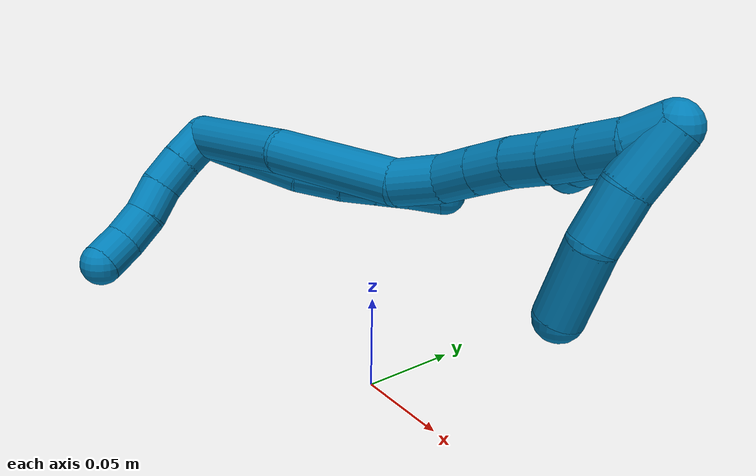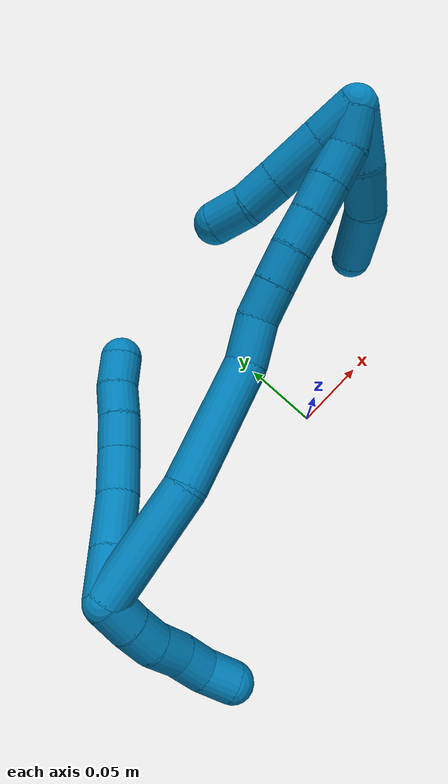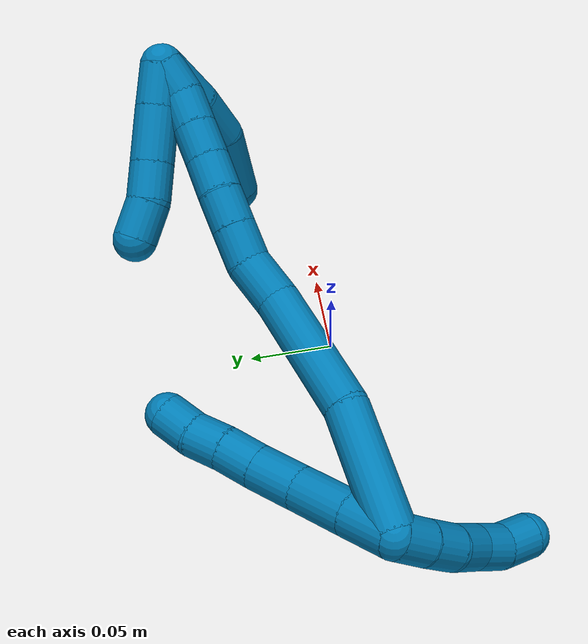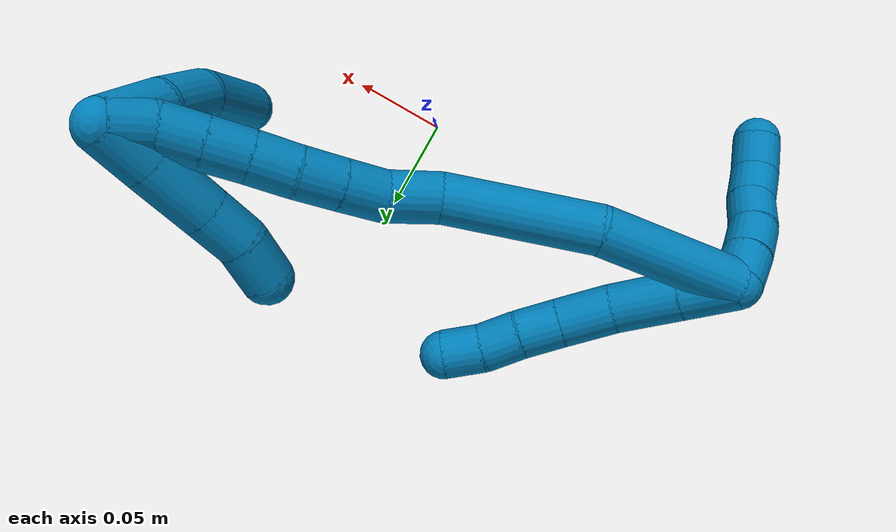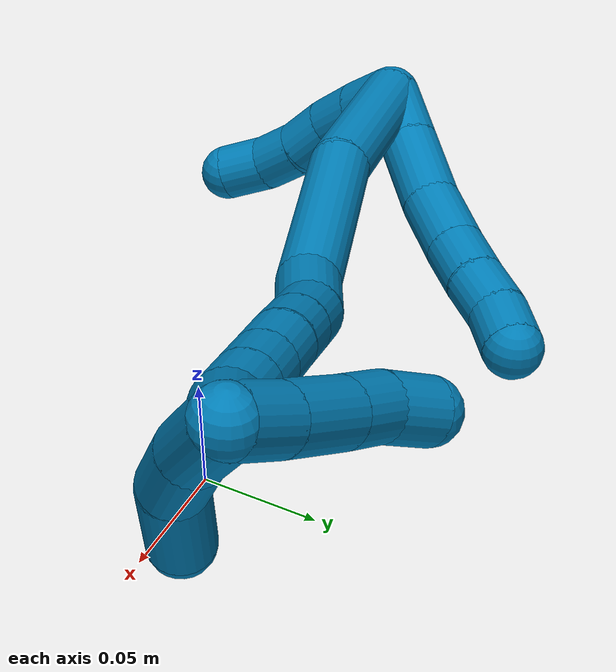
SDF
<sdf version="1.7">
 <world name="default">
  <model name="9">
   <static>0</static>
   <link name="9">
    <collision name="collision-cylinder-e_1_2_8">
     <pose>0.009787 0.009116 -0.003929 -1.97775 0.77833 -1.11475</pose>
     <geometry><cylinder><radius>0.0125</radius><length>0.02788</length></cylinder></geometry>
     <surface>
      <friction><ode><mu>1.16</mu><mu2>1.16</mu2><slip1>0</slip1><slip2>0</slip2></ode></friction>
      <contact><ode><kp>1e+06</kp><kd>1</kd><max_vel>0</max_vel><min_depth>0.001</min_depth></ode></contact>
     </surface>
    </collision>
    <visual name="visual-cylinder-e_1_2_8">
     <pose>0.009787 0.009116 -0.003929 -1.97775 0.77833 -1.11475</pose>
     <geometry><cylinder><radius>0.0125</radius><length>0.02788</length></cylinder></geometry>
     <material><ambient>0 0.490196 0.709804 1</ambient></material>
    </visual>
    <collision name="collision-cylinder-e_2_8_9">
     <pose>0.031233 0.029031 -0.012326 -1.96308 0.784152 -1.10789</pose>
     <geometry><cylinder><radius>0.0125</radius><length>0.033017</length></cylinder></geometry>
     <surface>
      <friction><ode><mu>1.16</mu><mu2>1.16</mu2><slip1>0</slip1><slip2>0</slip2></ode></friction>
      <contact><ode><kp>1e+06</kp><kd>1</kd><max_vel>0</max_vel><min_depth>0.001</min_depth></ode></contact>
     </surface>
    </collision>
    <visual name="visual-cylinder-e_2_8_9">
     <pose>0.031233 0.029031 -0.012326 -1.96308 0.784152 -1.10789</pose>
     <geometry><cylinder><radius>0.0125</radius><length>0.033017</length></cylinder></geometry>
     <material><ambient>0 0.490196 0.709804 1</ambient></material>
    </visual>
    <collision name="collision-cylinder-e_3_9_10">
     <pose>0.05244 0.049591 -0.018768 -1.77032 0.764493 -0.913573</pose>
     <geometry><cylinder><radius>0.0125</radius><length>0.027591</length></cylinder></geometry>
     <surface>
      <friction><ode><mu>1.16</mu><mu2>1.16</mu2><slip1>0</slip1><slip2>0</slip2></ode></friction>
      <contact><ode><kp>1e+06</kp><kd>1</kd><max_vel>0</max_vel><min_depth>0.001</min_depth></ode></contact>
     </surface>
    </collision>
    <visual name="visual-cylinder-e_3_9_10">
     <pose>0.05244 0.049591 -0.018768 -1.77032 0.764493 -0.913573</pose>
     <geometry><cylinder><radius>0.0125</radius><length>0.027591</length></cylinder></geometry>
     <material><ambient>0 0.490196 0.709804 1</ambient></material>
    </visual>
    <collision name="collision-cylinder-e_4_10_11">
     <pose>0.06954 0.066938 -0.021127 -1.62154 0.782226 -0.818654</pose>
     <geometry><cylinder><radius>0.0125</radius><length>0.021424</length></cylinder></geometry>
     <surface>
      <friction><ode><mu>1.16</mu><mu2>1.16</mu2><slip1>0</slip1><slip2>0</slip2></ode></friction>
      <contact><ode><kp>1e+06</kp><kd>1</kd><max_vel>0</max_vel><min_depth>0.001</min_depth></ode></contact>
     </surface>
    </collision>
    <visual name="visual-cylinder-e_4_10_11">
     <pose>0.06954 0.066938 -0.021127 -1.62154 0.782226 -0.818654</pose>
     <geometry><cylinder><radius>0.0125</radius><length>0.021424</length></cylinder></geometry>
     <material><ambient>0 0.490196 0.709804 1</ambient></material>
    </visual>
    <collision name="collision-cylinder-e_5_11_12">
     <pose>0.083575 0.082141 -0.022137 -1.65268 0.703815 -0.758527</pose>
     <geometry><cylinder><radius>0.0125</radius><length>0.020042</length></cylinder></geometry>
     <surface>
      <friction><ode><mu>1.16</mu><mu2>1.16</mu2><slip1>0</slip1><slip2>0</slip2></ode></friction>
      <contact><ode><kp>1e+06</kp><kd>1</kd><max_vel>0</max_vel><min_depth>0.001</min_depth></ode></contact>
     </surface>
    </collision>
    <visual name="visual-cylinder-e_5_11_12">
     <pose>0.083575 0.082141 -0.022137 -1.65268 0.703815 -0.758527</pose>
     <geometry><cylinder><radius>0.0125</radius><length>0.020042</length></cylinder></geometry>
     <material><ambient>0 0.490196 0.709804 1</ambient></material>
    </visual>
    <collision name="collision-cylinder-e_6_12_6">
     <pose>0.097911 0.095971 -0.023203 -1.64164 0.89995 -0.956697</pose>
     <geometry><cylinder><radius>0.0125</radius><length>0.020047</length></cylinder></geometry>
     <surface>
      <friction><ode><mu>1.16</mu><mu2>1.16</mu2><slip1>0</slip1><slip2>0</slip2></ode></friction>
      <contact><ode><kp>1e+06</kp><kd>1</kd><max_vel>0</max_vel><min_depth>0.001</min_depth></ode></contact>
     </surface>
    </collision>
    <visual name="visual-cylinder-e_6_12_6">
     <pose>0.097911 0.095971 -0.023203 -1.64164 0.89995 -0.956697</pose>
     <geometry><cylinder><radius>0.0125</radius><length>0.020047</length></cylinder></geometry>
     <material><ambient>0 0.490196 0.709804 1</ambient></material>
    </visual>
    <collision name="collision-cylinder-e_1_2_13">
     <pose>-0.000836 -0.00743 -0.006641 2.3002 -0.08374 -0.186732</pose>
     <geometry><cylinder><radius>0.0125</radius><length>0.02</length></cylinder></geometry>
     <surface>
      <friction><ode><mu>1.16</mu><mu2>1.16</mu2><slip1>0</slip1><slip2>0</slip2></ode></friction>
      <contact><ode><kp>1e+06</kp><kd>1</kd><max_vel>0</max_vel><min_depth>0.001</min_depth></ode></contact>
     </surface>
    </collision>
    <visual name="visual-cylinder-e_1_2_13">
     <pose>-0.000836 -0.00743 -0.006641 2.3002 -0.08374 -0.186732</pose>
     <geometry><cylinder><radius>0.0125</radius><length>0.02</length></cylinder></geometry>
     <material><ambient>0 0.490196 0.709804 1</ambient></material>
    </visual>
    <collision name="collision-cylinder-e_2_13_14">
     <pose>-0.001801 -0.021988 -0.020293 2.34788 -0.01283 -0.030613</pose>
     <geometry><cylinder><radius>0.0125</radius><length>0.02</length></cylinder></geometry>
     <surface>
      <friction><ode><mu>1.16</mu><mu2>1.16</mu2><slip1>0</slip1><slip2>0</slip2></ode></friction>
      <contact><ode><kp>1e+06</kp><kd>1</kd><max_vel>0</max_vel><min_depth>0.001</min_depth></ode></contact>
     </surface>
    </collision>
    <visual name="visual-cylinder-e_2_13_14">
     <pose>-0.001801 -0.021988 -0.020293 2.34788 -0.01283 -0.030613</pose>
     <geometry><cylinder><radius>0.0125</radius><length>0.02</length></cylinder></geometry>
     <material><ambient>0 0.490196 0.709804 1</ambient></material>
    </visual>
    <collision name="collision-cylinder-e_3_14_15">
     <pose>-0.000152 -0.035446 -0.03484 2.44301 0.178704 0.482377</pose>
     <geometry><cylinder><radius>0.0125</radius><length>0.02</length></cylinder></geometry>
     <surface>
      <friction><ode><mu>1.16</mu><mu2>1.16</mu2><slip1>0</slip1><slip2>0</slip2></ode></friction>
      <contact><ode><kp>1e+06</kp><kd>1</kd><max_vel>0</max_vel><min_depth>0.001</min_depth></ode></contact>
     </surface>
    </collision>
    <visual name="visual-cylinder-e_3_14_15">
     <pose>-0.000152 -0.035446 -0.03484 2.44301 0.178704 0.482377</pose>
     <geometry><cylinder><radius>0.0125</radius><length>0.02</length></cylinder></geometry>
     <material><ambient>0 0.490196 0.709804 1</ambient></material>
    </visual>
    <collision name="collision-cylinder-e_4_15_16">
     <pose>0.002557 -0.049385 -0.048796 2.27156 0.093267 0.200174</pose>
     <geometry><cylinder><radius>0.0125</radius><length>0.02</length></cylinder></geometry>
     <surface>
      <friction><ode><mu>1.16</mu><mu2>1.16</mu2><slip1>0</slip1><slip2>0</slip2></ode></friction>
      <contact><ode><kp>1e+06</kp><kd>1</kd><max_vel>0</max_vel><min_depth>0.001</min_depth></ode></contact>
     </surface>
    </collision>
    <visual name="visual-cylinder-e_4_15_16">
     <pose>0.002557 -0.049385 -0.048796 2.27156 0.093267 0.200174</pose>
     <geometry><cylinder><radius>0.0125</radius><length>0.02</length></cylinder></geometry>
     <material><ambient>0 0.490196 0.709804 1</ambient></material>
    </visual>
    <collision name="collision-cylinder-e_5_16_5">
     <pose>0.006371 -0.06561 -0.059396 2.02258 0.292394 0.461853</pose>
     <geometry><cylinder><radius>0.0125</radius><length>0.02</length></cylinder></geometry>
     <surface>
      <friction><ode><mu>1.16</mu><mu2>1.16</mu2><slip1>0</slip1><slip2>0</slip2></ode></friction>
      <contact><ode><kp>1e+06</kp><kd>1</kd><max_vel>0</max_vel><min_depth>0.001</min_depth></ode></contact>
     </surface>
    </collision>
    <visual name="visual-cylinder-e_5_16_5">
     <pose>0.006371 -0.06561 -0.059396 2.02258 0.292394 0.461853</pose>
     <geometry><cylinder><radius>0.0125</radius><length>0.02</length></cylinder></geometry>
     <material><ambient>0 0.490196 0.709804 1</ambient></material>
    </visual>
    <collision name="collision-cylinder-e_1_2_17">
     <pose>0.035561 0.004173 0.003637 -0.853985 1.41637 -0.743085</pose>
     <geometry><cylinder><radius>0.0125</radius><length>0.071978</length></cylinder></geometry>
     <surface>
      <friction><ode><mu>1.16</mu><mu2>1.16</mu2><slip1>0</slip1><slip2>0</slip2></ode></friction>
      <contact><ode><kp>1e+06</kp><kd>1</kd><max_vel>0</max_vel><min_depth>0.001</min_depth></ode></contact>
     </surface>
    </collision>
    <visual name="visual-cylinder-e_1_2_17">
     <pose>0.035561 0.004173 0.003637 -0.853985 1.41637 -0.743085</pose>
     <geometry><cylinder><radius>0.0125</radius><length>0.071978</length></cylinder></geometry>
     <material><ambient>0 0.490196 0.709804 1</ambient></material>
    </visual>
    <collision name="collision-cylinder-e_2_17_18">
     <pose>0.107786 0.019593 0.00658 -1.63243 1.27265 -1.3321</pose>
     <geometry><cylinder><radius>0.0125</radius><length>0.076714</length></cylinder></geometry>
     <surface>
      <friction><ode><mu>1.16</mu><mu2>1.16</mu2><slip1>0</slip1><slip2>0</slip2></ode></friction>
      <contact><ode><kp>1e+06</kp><kd>1</kd><max_vel>0</max_vel><min_depth>0.001</min_depth></ode></contact>
     </surface>
    </collision>
    <visual name="visual-cylinder-e_2_17_18">
     <pose>0.107786 0.019593 0.00658 -1.63243 1.27265 -1.3321</pose>
     <geometry><cylinder><radius>0.0125</radius><length>0.076714</length></cylinder></geometry>
     <material><ambient>0 0.490196 0.709804 1</ambient></material>
    </visual>
    <collision name="collision-cylinder-e_3_18_19">
     <pose>0.15611 0.036552 0.009288 -1.03371 1.05245 -0.63778</pose>
     <geometry><cylinder><radius>0.0125</radius><length>0.026845</length></cylinder></geometry>
     <surface>
      <friction><ode><mu>1.16</mu><mu2>1.16</mu2><slip1>0</slip1><slip2>0</slip2></ode></friction>
      <contact><ode><kp>1e+06</kp><kd>1</kd><max_vel>0</max_vel><min_depth>0.001</min_depth></ode></contact>
     </surface>
    </collision>
    <visual name="visual-cylinder-e_3_18_19">
     <pose>0.15611 0.036552 0.009288 -1.03371 1.05245 -0.63778</pose>
     <geometry><cylinder><radius>0.0125</radius><length>0.026845</length></cylinder></geometry>
     <material><ambient>0 0.490196 0.709804 1</ambient></material>
    </visual>
    <collision name="collision-cylinder-e_4_19_20">
     <pose>0.177562 0.044238 0.017226 -0.410029 1.10313 -0.254487</pose>
     <geometry><cylinder><radius>0.0125</radius><length>0.021942</length></cylinder></geometry>
     <surface>
      <friction><ode><mu>1.16</mu><mu2>1.16</mu2><slip1>0</slip1><slip2>0</slip2></ode></friction>
      <contact><ode><kp>1e+06</kp><kd>1</kd><max_vel>0</max_vel><min_depth>0.001</min_depth></ode></contact>
     </surface>
    </collision>
    <visual name="visual-cylinder-e_4_19_20">
     <pose>0.177562 0.044238 0.017226 -0.410029 1.10313 -0.254487</pose>
     <geometry><cylinder><radius>0.0125</radius><length>0.021942</length></cylinder></geometry>
     <material><ambient>0 0.490196 0.709804 1</ambient></material>
    </visual>
    <collision name="collision-cylinder-e_5_20_21">
     <pose>0.196725 0.047985 0.025948 -0.401219 1.11897 -0.253319</pose>
     <geometry><cylinder><radius>0.0125</radius><length>0.020829</length></cylinder></geometry>
     <surface>
      <friction><ode><mu>1.16</mu><mu2>1.16</mu2><slip1>0</slip1><slip2>0</slip2></ode></friction>
      <contact><ode><kp>1e+06</kp><kd>1</kd><max_vel>0</max_vel><min_depth>0.001</min_depth></ode></contact>
     </surface>
    </collision>
    <visual name="visual-cylinder-e_5_20_21">
     <pose>0.196725 0.047985 0.025948 -0.401219 1.11897 -0.253319</pose>
     <geometry><cylinder><radius>0.0125</radius><length>0.020829</length></cylinder></geometry>
     <material><ambient>0 0.490196 0.709804 1</ambient></material>
    </visual>
    <collision name="collision-cylinder-e_6_21_22">
     <pose>0.215975 0.051308 0.033537 -0.426648 1.20912 -0.2971</pose>
     <geometry><cylinder><radius>0.0125</radius><length>0.021129</length></cylinder></geometry>
     <surface>
      <friction><ode><mu>1.16</mu><mu2>1.16</mu2><slip1>0</slip1><slip2>0</slip2></ode></friction>
      <contact><ode><kp>1e+06</kp><kd>1</kd><max_vel>0</max_vel><min_depth>0.001</min_depth></ode></contact>
     </surface>
    </collision>
    <visual name="visual-cylinder-e_6_21_22">
     <pose>0.215975 0.051308 0.033537 -0.426648 1.20912 -0.2971</pose>
     <geometry><cylinder><radius>0.0125</radius><length>0.021129</length></cylinder></geometry>
     <material><ambient>0 0.490196 0.709804 1</ambient></material>
    </visual>
    <collision name="collision-cylinder-e_7_22_23">
     <pose>0.235152 0.05452 0.040582 -0.428892 1.16406 -0.28471</pose>
     <geometry><cylinder><radius>0.0125</radius><length>0.020242</length></cylinder></geometry>
     <surface>
      <friction><ode><mu>1.16</mu><mu2>1.16</mu2><slip1>0</slip1><slip2>0</slip2></ode></friction>
      <contact><ode><kp>1e+06</kp><kd>1</kd><max_vel>0</max_vel><min_depth>0.001</min_depth></ode></contact>
     </surface>
    </collision>
    <visual name="visual-cylinder-e_7_22_23">
     <pose>0.235152 0.05452 0.040582 -0.428892 1.16406 -0.28471</pose>
     <geometry><cylinder><radius>0.0125</radius><length>0.020242</length></cylinder></geometry>
     <material><ambient>0 0.490196 0.709804 1</ambient></material>
    </visual>
    <collision name="collision-cylinder-e_8_23_24">
     <pose>0.253669 0.057826 0.047823 -0.427876 1.16556 -0.284482</pose>
     <geometry><cylinder><radius>0.0125</radius><length>0.02007</length></cylinder></geometry>
     <surface>
      <friction><ode><mu>1.16</mu><mu2>1.16</mu2><slip1>0</slip1><slip2>0</slip2></ode></friction>
      <contact><ode><kp>1e+06</kp><kd>1</kd><max_vel>0</max_vel><min_depth>0.001</min_depth></ode></contact>
     </surface>
    </collision>
    <visual name="visual-cylinder-e_8_23_24">
     <pose>0.253669 0.057826 0.047823 -0.427876 1.16556 -0.284482</pose>
     <geometry><cylinder><radius>0.0125</radius><length>0.02007</length></cylinder></geometry>
     <material><ambient>0 0.490196 0.709804 1</ambient></material>
    </visual>
    <collision name="collision-cylinder-e_9_24_1">
     <pose>0.270772 0.063264 0.056523 -0.639777 0.891861 -0.314112</pose>
     <geometry><cylinder><radius>0.0125</radius><length>0.020251</length></cylinder></geometry>
     <surface>
      <friction><ode><mu>1.16</mu><mu2>1.16</mu2><slip1>0</slip1><slip2>0</slip2></ode></friction>
      <contact><ode><kp>1e+06</kp><kd>1</kd><max_vel>0</max_vel><min_depth>0.001</min_depth></ode></contact>
     </surface>
    </collision>
    <visual name="visual-cylinder-e_9_24_1">
     <pose>0.270772 0.063264 0.056523 -0.639777 0.891861 -0.314112</pose>
     <geometry><cylinder><radius>0.0125</radius><length>0.020251</length></cylinder></geometry>
     <material><ambient>0 0.490196 0.709804 1</ambient></material>
    </visual>
    <collision name="collision-cylinder-e_1_1_25">
     <pose>0.274392 0.059321 0.048242 2.61727 -0.268884 -0.933784</pose>
     <geometry><cylinder><radius>0.0125</radius><length>0.032071</length></cylinder></geometry>
     <surface>
      <friction><ode><mu>1.16</mu><mu2>1.16</mu2><slip1>0</slip1><slip2>0</slip2></ode></friction>
      <contact><ode><kp>1e+06</kp><kd>1</kd><max_vel>0</max_vel><min_depth>0.001</min_depth></ode></contact>
     </surface>
    </collision>
    <visual name="visual-cylinder-e_1_1_25">
     <pose>0.274392 0.059321 0.048242 2.61727 -0.268884 -0.933784</pose>
     <geometry><cylinder><radius>0.0125</radius><length>0.032071</length></cylinder></geometry>
     <material><ambient>0 0.490196 0.709804 1</ambient></material>
    </visual>
    <collision name="collision-cylinder-e_2_25_26">
     <pose>0.267155 0.046584 0.022223 2.76496 -0.215672 -1.03319</pose>
     <geometry><cylinder><radius>0.0125</radius><length>0.027822</length></cylinder></geometry>
     <surface>
      <friction><ode><mu>1.16</mu><mu2>1.16</mu2><slip1>0</slip1><slip2>0</slip2></ode></friction>
      <contact><ode><kp>1e+06</kp><kd>1</kd><max_vel>0</max_vel><min_depth>0.001</min_depth></ode></contact>
     </surface>
    </collision>
    <visual name="visual-cylinder-e_2_25_26">
     <pose>0.267155 0.046584 0.022223 2.76496 -0.215672 -1.03319</pose>
     <geometry><cylinder><radius>0.0125</radius><length>0.027822</length></cylinder></geometry>
     <material><ambient>0 0.490196 0.709804 1</ambient></material>
    </visual>
    <collision name="collision-cylinder-e_3_26_4">
     <pose>0.258439 0.040433 -0.009594 3.08155 -0.290239 -2.73629</pose>
     <geometry><cylinder><radius>0.0125</radius><length>0.040107</length></cylinder></geometry>
     <surface>
      <friction><ode><mu>1.16</mu><mu2>1.16</mu2><slip1>0</slip1><slip2>0</slip2></ode></friction>
      <contact><ode><kp>1e+06</kp><kd>1</kd><max_vel>0</max_vel><min_depth>0.001</min_depth></ode></contact>
     </surface>
    </collision>
    <visual name="visual-cylinder-e_3_26_4">
     <pose>0.258439 0.040433 -0.009594 3.08155 -0.290239 -2.73629</pose>
     <geometry><cylinder><radius>0.0125</radius><length>0.040107</length></cylinder></geometry>
     <material><ambient>0 0.490196 0.709804 1</ambient></material>
    </visual>
    <collision name="collision-cylinder-e_1_1_27">
     <pose>0.268723 0.070793 0.055677 -2.58114 -0.955305 2.12673</pose>
     <geometry><cylinder><radius>0.0125</radius><length>0.024321</length></cylinder></geometry>
     <surface>
      <friction><ode><mu>1.16</mu><mu2>1.16</mu2><slip1>0</slip1><slip2>0</slip2></ode></friction>
      <contact><ode><kp>1e+06</kp><kd>1</kd><max_vel>0</max_vel><min_depth>0.001</min_depth></ode></contact>
     </surface>
    </collision>
    <visual name="visual-cylinder-e_1_1_27">
     <pose>0.268723 0.070793 0.055677 -2.58114 -0.955305 2.12673</pose>
     <geometry><cylinder><radius>0.0125</radius><length>0.024321</length></cylinder></geometry>
     <material><ambient>0 0.490196 0.709804 1</ambient></material>
    </visual>
    <collision name="collision-cylinder-e_2_27_28">
     <pose>0.245382 0.0791 0.042423 -2.58217 -0.999441 2.17292</pose>
     <geometry><cylinder><radius>0.0125</radius><length>0.031887</length></cylinder></geometry>
     <surface>
      <friction><ode><mu>1.16</mu><mu2>1.16</mu2><slip1>0</slip1><slip2>0</slip2></ode></friction>
      <contact><ode><kp>1e+06</kp><kd>1</kd><max_vel>0</max_vel><min_depth>0.001</min_depth></ode></contact>
     </surface>
    </collision>
    <visual name="visual-cylinder-e_2_27_28">
     <pose>0.245382 0.0791 0.042423 -2.58217 -0.999441 2.17292</pose>
     <geometry><cylinder><radius>0.0125</radius><length>0.031887</length></cylinder></geometry>
     <material><ambient>0 0.490196 0.709804 1</ambient></material>
    </visual>
    <collision name="collision-cylinder-e_3_28_29">
     <pose>0.222748 0.086728 0.030526 -2.55458 -1.03218 2.16269</pose>
     <geometry><cylinder><radius>0.0125</radius><length>0.02149</length></cylinder></geometry>
     <surface>
      <friction><ode><mu>1.16</mu><mu2>1.16</mu2><slip1>0</slip1><slip2>0</slip2></ode></friction>
      <contact><ode><kp>1e+06</kp><kd>1</kd><max_vel>0</max_vel><min_depth>0.001</min_depth></ode></contact>
     </surface>
    </collision>
    <visual name="visual-cylinder-e_3_28_29">
     <pose>0.222748 0.086728 0.030526 -2.55458 -1.03218 2.16269</pose>
     <geometry><cylinder><radius>0.0125</radius><length>0.02149</length></cylinder></geometry>
     <material><ambient>0 0.490196 0.709804 1</ambient></material>
    </visual>
    <collision name="collision-cylinder-e_4_29_3">
     <pose>0.205329 0.095505 0.020995 -2.28298 -0.825539 1.52647</pose>
     <geometry><cylinder><radius>0.0125</radius><length>0.022302</length></cylinder></geometry>
     <surface>
      <friction><ode><mu>1.16</mu><mu2>1.16</mu2><slip1>0</slip1><slip2>0</slip2></ode></friction>
      <contact><ode><kp>1e+06</kp><kd>1</kd><max_vel>0</max_vel><min_depth>0.001</min_depth></ode></contact>
     </surface>
    </collision>
    <visual name="visual-cylinder-e_4_29_3">
     <pose>0.205329 0.095505 0.020995 -2.28298 -0.825539 1.52647</pose>
     <geometry><cylinder><radius>0.0125</radius><length>0.022302</length></cylinder></geometry>
     <material><ambient>0 0.490196 0.709804 1</ambient></material>
    </visual>
    <collision name="collision-sphere-3">
     <pose>0.197134 0.101229 0.016054 0 -0 0</pose>
     <geometry><sphere><radius>0.0125</radius></sphere></geometry>
     <surface>
      <friction><ode><mu>1.16</mu><mu2>1.16</mu2><slip1>0</slip1><slip2>0</slip2></ode></friction>
      <contact><ode><kp>1e+06</kp><kd>1</kd><max_vel>0</max_vel><min_depth>0.001</min_depth></ode></contact>
     </surface>
    </collision>
    <visual name="visual-sphere-3">
     <pose>0.197134 0.101229 0.016054 0 -0 0</pose>
     <geometry><sphere><radius>0.0125</radius></sphere></geometry>
     <material><ambient>0 0.490196 0.709804 1</ambient></material>
    </visual>
    <collision name="collision-sphere-29">
     <pose>0.213524 0.089781 0.025937 0 -0 0</pose>
     <geometry><sphere><radius>0.0125</radius></sphere></geometry>
     <surface>
      <friction><ode><mu>1.16</mu><mu2>1.16</mu2><slip1>0</slip1><slip2>0</slip2></ode></friction>
      <contact><ode><kp>1e+06</kp><kd>1</kd><max_vel>0</max_vel><min_depth>0.001</min_depth></ode></contact>
     </surface>
    </collision>
    <visual name="visual-sphere-29">
     <pose>0.213524 0.089781 0.025937 0 -0 0</pose>
     <geometry><sphere><radius>0.0125</radius></sphere></geometry>
     <material><ambient>0 0.490196 0.709804 1</ambient></material>
    </visual>
    <collision name="collision-sphere-28">
     <pose>0.231971 0.083676 0.035115 0 -0 0</pose>
     <geometry><sphere><radius>0.0125</radius></sphere></geometry>
     <surface>
      <friction><ode><mu>1.16</mu><mu2>1.16</mu2><slip1>0</slip1><slip2>0</slip2></ode></friction>
      <contact><ode><kp>1e+06</kp><kd>1</kd><max_vel>0</max_vel><min_depth>0.001</min_depth></ode></contact>
     </surface>
    </collision>
    <visual name="visual-sphere-28">
     <pose>0.231971 0.083676 0.035115 0 -0 0</pose>
     <geometry><sphere><radius>0.0125</radius></sphere></geometry>
     <material><ambient>0 0.490196 0.709804 1</ambient></material>
    </visual>
    <collision name="collision-sphere-27">
     <pose>0.258794 0.074525 0.04973 0 -0 0</pose>
     <geometry><sphere><radius>0.0125</radius></sphere></geometry>
     <surface>
      <friction><ode><mu>1.16</mu><mu2>1.16</mu2><slip1>0</slip1><slip2>0</slip2></ode></friction>
      <contact><ode><kp>1e+06</kp><kd>1</kd><max_vel>0</max_vel><min_depth>0.001</min_depth></ode></contact>
     </surface>
    </collision>
    <visual name="visual-sphere-27">
     <pose>0.258794 0.074525 0.04973 0 -0 0</pose>
     <geometry><sphere><radius>0.0125</radius></sphere></geometry>
     <material><ambient>0 0.490196 0.709804 1</ambient></material>
    </visual>
    <collision name="collision-sphere-4">
     <pose>0.2527 0.03928 -0.028774 0 -0 0</pose>
     <geometry><sphere><radius>0.0125</radius></sphere></geometry>
     <surface>
      <friction><ode><mu>1.16</mu><mu2>1.16</mu2><slip1>0</slip1><slip2>0</slip2></ode></friction>
      <contact><ode><kp>1e+06</kp><kd>1</kd><max_vel>0</max_vel><min_depth>0.001</min_depth></ode></contact>
     </surface>
    </collision>
    <visual name="visual-sphere-4">
     <pose>0.2527 0.03928 -0.028774 0 -0 0</pose>
     <geometry><sphere><radius>0.0125</radius></sphere></geometry>
     <material><ambient>0 0.490196 0.709804 1</ambient></material>
    </visual>
    <collision name="collision-sphere-26">
     <pose>0.264178 0.041586 0.009587 0 -0 0</pose>
     <geometry><sphere><radius>0.0125</radius></sphere></geometry>
     <surface>
      <friction><ode><mu>1.16</mu><mu2>1.16</mu2><slip1>0</slip1><slip2>0</slip2></ode></friction>
      <contact><ode><kp>1e+06</kp><kd>1</kd><max_vel>0</max_vel><min_depth>0.001</min_depth></ode></contact>
     </surface>
    </collision>
    <visual name="visual-sphere-26">
     <pose>0.264178 0.041586 0.009587 0 -0 0</pose>
     <geometry><sphere><radius>0.0125</radius></sphere></geometry>
     <material><ambient>0 0.490196 0.709804 1</ambient></material>
    </visual>
    <collision name="collision-sphere-25">
     <pose>0.270132 0.051582 0.034859 0 -0 0</pose>
     <geometry><sphere><radius>0.0125</radius></sphere></geometry>
     <surface>
      <friction><ode><mu>1.16</mu><mu2>1.16</mu2><slip1>0</slip1><slip2>0</slip2></ode></friction>
      <contact><ode><kp>1e+06</kp><kd>1</kd><max_vel>0</max_vel><min_depth>0.001</min_depth></ode></contact>
     </surface>
    </collision>
    <visual name="visual-sphere-25">
     <pose>0.270132 0.051582 0.034859 0 -0 0</pose>
     <geometry><sphere><radius>0.0125</radius></sphere></geometry>
     <material><ambient>0 0.490196 0.709804 1</ambient></material>
    </visual>
    <collision name="collision-sphere-1">
     <pose>0.278652 0.06706 0.061624 0 -0 0</pose>
     <geometry><sphere><radius>0.0125</radius></sphere></geometry>
     <surface>
      <friction><ode><mu>1.16</mu><mu2>1.16</mu2><slip1>0</slip1><slip2>0</slip2></ode></friction>
      <contact><ode><kp>1e+06</kp><kd>1</kd><max_vel>0</max_vel><min_depth>0.001</min_depth></ode></contact>
     </surface>
    </collision>
    <visual name="visual-sphere-1">
     <pose>0.278652 0.06706 0.061624 0 -0 0</pose>
     <geometry><sphere><radius>0.0125</radius></sphere></geometry>
     <material><ambient>0 0.490196 0.709804 1</ambient></material>
    </visual>
    <collision name="collision-sphere-24">
     <pose>0.262891 0.059468 0.051422 0 -0 0</pose>
     <geometry><sphere><radius>0.0125</radius></sphere></geometry>
     <surface>
      <friction><ode><mu>1.16</mu><mu2>1.16</mu2><slip1>0</slip1><slip2>0</slip2></ode></friction>
      <contact><ode><kp>1e+06</kp><kd>1</kd><max_vel>0</max_vel><min_depth>0.001</min_depth></ode></contact>
     </surface>
    </collision>
    <visual name="visual-sphere-24">
     <pose>0.262891 0.059468 0.051422 0 -0 0</pose>
     <geometry><sphere><radius>0.0125</radius></sphere></geometry>
     <material><ambient>0 0.490196 0.709804 1</ambient></material>
    </visual>
    <collision name="collision-sphere-23">
     <pose>0.244447 0.056185 0.044223 0 -0 0</pose>
     <geometry><sphere><radius>0.0125</radius></sphere></geometry>
     <surface>
      <friction><ode><mu>1.16</mu><mu2>1.16</mu2><slip1>0</slip1><slip2>0</slip2></ode></friction>
      <contact><ode><kp>1e+06</kp><kd>1</kd><max_vel>0</max_vel><min_depth>0.001</min_depth></ode></contact>
     </surface>
    </collision>
    <visual name="visual-sphere-23">
     <pose>0.244447 0.056185 0.044223 0 -0 0</pose>
     <geometry><sphere><radius>0.0125</radius></sphere></geometry>
     <material><ambient>0 0.490196 0.709804 1</ambient></material>
    </visual>
    <collision name="collision-sphere-22">
     <pose>0.225856 0.052855 0.03694 0 -0 0</pose>
     <geometry><sphere><radius>0.0125</radius></sphere></geometry>
     <surface>
      <friction><ode><mu>1.16</mu><mu2>1.16</mu2><slip1>0</slip1><slip2>0</slip2></ode></friction>
      <contact><ode><kp>1e+06</kp><kd>1</kd><max_vel>0</max_vel><min_depth>0.001</min_depth></ode></contact>
     </surface>
    </collision>
    <visual name="visual-sphere-22">
     <pose>0.225856 0.052855 0.03694 0 -0 0</pose>
     <geometry><sphere><radius>0.0125</radius></sphere></geometry>
     <material><ambient>0 0.490196 0.709804 1</ambient></material>
    </visual>
    <collision name="collision-sphere-21">
     <pose>0.206094 0.049761 0.030134 0 -0 0</pose>
     <geometry><sphere><radius>0.0125</radius></sphere></geometry>
     <surface>
      <friction><ode><mu>1.16</mu><mu2>1.16</mu2><slip1>0</slip1><slip2>0</slip2></ode></friction>
      <contact><ode><kp>1e+06</kp><kd>1</kd><max_vel>0</max_vel><min_depth>0.001</min_depth></ode></contact>
     </surface>
    </collision>
    <visual name="visual-sphere-21">
     <pose>0.206094 0.049761 0.030134 0 -0 0</pose>
     <geometry><sphere><radius>0.0125</radius></sphere></geometry>
     <material><ambient>0 0.490196 0.709804 1</ambient></material>
    </visual>
    <collision name="collision-sphere-12">
     <pose>0.09006 0.089755 -0.022762 0 -0 0</pose>
     <geometry><sphere><radius>0.0125</radius></sphere></geometry>
     <surface>
      <friction><ode><mu>1.16</mu><mu2>1.16</mu2><slip1>0</slip1><slip2>0</slip2></ode></friction>
      <contact><ode><kp>1e+06</kp><kd>1</kd><max_vel>0</max_vel><min_depth>0.001</min_depth></ode></contact>
     </surface>
    </collision>
    <visual name="visual-sphere-12">
     <pose>0.09006 0.089755 -0.022762 0 -0 0</pose>
     <geometry><sphere><radius>0.0125</radius></sphere></geometry>
     <material><ambient>0 0.490196 0.709804 1</ambient></material>
    </visual>
    <collision name="collision-sphere-11">
     <pose>0.07709 0.074527 -0.021512 0 -0 0</pose>
     <geometry><sphere><radius>0.0125</radius></sphere></geometry>
     <surface>
      <friction><ode><mu>1.16</mu><mu2>1.16</mu2><slip1>0</slip1><slip2>0</slip2></ode></friction>
      <contact><ode><kp>1e+06</kp><kd>1</kd><max_vel>0</max_vel><min_depth>0.001</min_depth></ode></contact>
     </surface>
    </collision>
    <visual name="visual-sphere-11">
     <pose>0.07709 0.074527 -0.021512 0 -0 0</pose>
     <geometry><sphere><radius>0.0125</radius></sphere></geometry>
     <material><ambient>0 0.490196 0.709804 1</ambient></material>
    </visual>
    <collision name="collision-sphere-10">
     <pose>0.061989 0.05935 -0.020741 0 -0 0</pose>
     <geometry><sphere><radius>0.0125</radius></sphere></geometry>
     <surface>
      <friction><ode><mu>1.16</mu><mu2>1.16</mu2><slip1>0</slip1><slip2>0</slip2></ode></friction>
      <contact><ode><kp>1e+06</kp><kd>1</kd><max_vel>0</max_vel><min_depth>0.001</min_depth></ode></contact>
     </surface>
    </collision>
    <visual name="visual-sphere-10">
     <pose>0.061989 0.05935 -0.020741 0 -0 0</pose>
     <geometry><sphere><radius>0.0125</radius></sphere></geometry>
     <material><ambient>0 0.490196 0.709804 1</ambient></material>
    </visual>
    <collision name="collision-sphere-9">
     <pose>0.042891 0.039831 -0.016794 0 -0 0</pose>
     <geometry><sphere><radius>0.0125</radius></sphere></geometry>
     <surface>
      <friction><ode><mu>1.16</mu><mu2>1.16</mu2><slip1>0</slip1><slip2>0</slip2></ode></friction>
      <contact><ode><kp>1e+06</kp><kd>1</kd><max_vel>0</max_vel><min_depth>0.001</min_depth></ode></contact>
     </surface>
    </collision>
    <visual name="visual-sphere-9">
     <pose>0.042891 0.039831 -0.016794 0 -0 0</pose>
     <geometry><sphere><radius>0.0125</radius></sphere></geometry>
     <material><ambient>0 0.490196 0.709804 1</ambient></material>
    </visual>
    <collision name="collision-sphere-2">
     <geometry><sphere><radius>0.0125</radius></sphere></geometry>
     <surface>
      <friction><ode><mu>1.16</mu><mu2>1.16</mu2><slip1>0</slip1><slip2>0</slip2></ode></friction>
      <contact><ode><kp>1e+06</kp><kd>1</kd><max_vel>0</max_vel><min_depth>0.001</min_depth></ode></contact>
     </surface>
    </collision>
    <visual name="visual-sphere-2">
     <geometry><sphere><radius>0.0125</radius></sphere></geometry>
     <material><ambient>0 0.490196 0.709804 1</ambient></material>
    </visual>
    <collision name="collision-sphere-19">
     <pose>0.167769 0.042266 0.012691 0 -0 0</pose>
     <geometry><sphere><radius>0.0125</radius></sphere></geometry>
     <surface>
      <friction><ode><mu>1.16</mu><mu2>1.16</mu2><slip1>0</slip1><slip2>0</slip2></ode></friction>
      <contact><ode><kp>1e+06</kp><kd>1</kd><max_vel>0</max_vel><min_depth>0.001</min_depth></ode></contact>
     </surface>
    </collision>
    <visual name="visual-sphere-19">
     <pose>0.167769 0.042266 0.012691 0 -0 0</pose>
     <geometry><sphere><radius>0.0125</radius></sphere></geometry>
     <material><ambient>0 0.490196 0.709804 1</ambient></material>
    </visual>
    <collision name="collision-sphere-8">
     <pose>0.019574 0.018231 -0.007858 0 -0 0</pose>
     <geometry><sphere><radius>0.0125</radius></sphere></geometry>
     <surface>
      <friction><ode><mu>1.16</mu><mu2>1.16</mu2><slip1>0</slip1><slip2>0</slip2></ode></friction>
      <contact><ode><kp>1e+06</kp><kd>1</kd><max_vel>0</max_vel><min_depth>0.001</min_depth></ode></contact>
     </surface>
    </collision>
    <visual name="visual-sphere-8">
     <pose>0.019574 0.018231 -0.007858 0 -0 0</pose>
     <geometry><sphere><radius>0.0125</radius></sphere></geometry>
     <material><ambient>0 0.490196 0.709804 1</ambient></material>
    </visual>
    <collision name="collision-sphere-6">
     <pose>0.105762 0.102186 -0.023644 0 -0 0</pose>
     <geometry><sphere><radius>0.0125</radius></sphere></geometry>
     <surface>
      <friction><ode><mu>1.16</mu><mu2>1.16</mu2><slip1>0</slip1><slip2>0</slip2></ode></friction>
      <contact><ode><kp>1e+06</kp><kd>1</kd><max_vel>0</max_vel><min_depth>0.001</min_depth></ode></contact>
     </surface>
    </collision>
    <visual name="visual-sphere-6">
     <pose>0.105762 0.102186 -0.023644 0 -0 0</pose>
     <geometry><sphere><radius>0.0125</radius></sphere></geometry>
     <material><ambient>0 0.490196 0.709804 1</ambient></material>
    </visual>
    <collision name="collision-sphere-13">
     <pose>-0.001673 -0.014859 -0.013282 0 -0 0</pose>
     <geometry><sphere><radius>0.0125</radius></sphere></geometry>
     <surface>
      <friction><ode><mu>1.16</mu><mu2>1.16</mu2><slip1>0</slip1><slip2>0</slip2></ode></friction>
      <contact><ode><kp>1e+06</kp><kd>1</kd><max_vel>0</max_vel><min_depth>0.001</min_depth></ode></contact>
     </surface>
    </collision>
    <visual name="visual-sphere-13">
     <pose>-0.001673 -0.014859 -0.013282 0 -0 0</pose>
     <geometry><sphere><radius>0.0125</radius></sphere></geometry>
     <material><ambient>0 0.490196 0.709804 1</ambient></material>
    </visual>
    <collision name="collision-sphere-14">
     <pose>-0.001929 -0.029117 -0.027305 0 -0 0</pose>
     <geometry><sphere><radius>0.0125</radius></sphere></geometry>
     <surface>
      <friction><ode><mu>1.16</mu><mu2>1.16</mu2><slip1>0</slip1><slip2>0</slip2></ode></friction>
      <contact><ode><kp>1e+06</kp><kd>1</kd><max_vel>0</max_vel><min_depth>0.001</min_depth></ode></contact>
     </surface>
    </collision>
    <visual name="visual-sphere-14">
     <pose>-0.001929 -0.029117 -0.027305 0 -0 0</pose>
     <geometry><sphere><radius>0.0125</radius></sphere></geometry>
     <material><ambient>0 0.490196 0.709804 1</ambient></material>
    </visual>
    <collision name="collision-sphere-15">
     <pose>0.001626 -0.041775 -0.042376 0 -0 0</pose>
     <geometry><sphere><radius>0.0125</radius></sphere></geometry>
     <surface>
      <friction><ode><mu>1.16</mu><mu2>1.16</mu2><slip1>0</slip1><slip2>0</slip2></ode></friction>
      <contact><ode><kp>1e+06</kp><kd>1</kd><max_vel>0</max_vel><min_depth>0.001</min_depth></ode></contact>
     </surface>
    </collision>
    <visual name="visual-sphere-15">
     <pose>0.001626 -0.041775 -0.042376 0 -0 0</pose>
     <geometry><sphere><radius>0.0125</radius></sphere></geometry>
     <material><ambient>0 0.490196 0.709804 1</ambient></material>
    </visual>
    <collision name="collision-sphere-16">
     <pose>0.003488 -0.056996 -0.055216 0 -0 0</pose>
     <geometry><sphere><radius>0.0125</radius></sphere></geometry>
     <surface>
      <friction><ode><mu>1.16</mu><mu2>1.16</mu2><slip1>0</slip1><slip2>0</slip2></ode></friction>
      <contact><ode><kp>1e+06</kp><kd>1</kd><max_vel>0</max_vel><min_depth>0.001</min_depth></ode></contact>
     </surface>
    </collision>
    <visual name="visual-sphere-16">
     <pose>0.003488 -0.056996 -0.055216 0 -0 0</pose>
     <geometry><sphere><radius>0.0125</radius></sphere></geometry>
     <material><ambient>0 0.490196 0.709804 1</ambient></material>
    </visual>
    <collision name="collision-sphere-5">
     <pose>0.009253 -0.074225 -0.063577 0 -0 0</pose>
     <geometry><sphere><radius>0.0125</radius></sphere></geometry>
     <surface>
      <friction><ode><mu>1.16</mu><mu2>1.16</mu2><slip1>0</slip1><slip2>0</slip2></ode></friction>
      <contact><ode><kp>1e+06</kp><kd>1</kd><max_vel>0</max_vel><min_depth>0.001</min_depth></ode></contact>
     </surface>
    </collision>
    <visual name="visual-sphere-5">
     <pose>0.009253 -0.074225 -0.063577 0 -0 0</pose>
     <geometry><sphere><radius>0.0125</radius></sphere></geometry>
     <material><ambient>0 0.490196 0.709804 1</ambient></material>
    </visual>
    <collision name="collision-sphere-17">
     <pose>0.071121 0.008347 0.007274 0 -0 0</pose>
     <geometry><sphere><radius>0.0125</radius></sphere></geometry>
     <surface>
      <friction><ode><mu>1.16</mu><mu2>1.16</mu2><slip1>0</slip1><slip2>0</slip2></ode></friction>
      <contact><ode><kp>1e+06</kp><kd>1</kd><max_vel>0</max_vel><min_depth>0.001</min_depth></ode></contact>
     </surface>
    </collision>
    <visual name="visual-sphere-17">
     <pose>0.071121 0.008347 0.007274 0 -0 0</pose>
     <geometry><sphere><radius>0.0125</radius></sphere></geometry>
     <material><ambient>0 0.490196 0.709804 1</ambient></material>
    </visual>
    <collision name="collision-sphere-18">
     <pose>0.144451 0.030839 0.005886 0 -0 0</pose>
     <geometry><sphere><radius>0.0125</radius></sphere></geometry>
     <surface>
      <friction><ode><mu>1.16</mu><mu2>1.16</mu2><slip1>0</slip1><slip2>0</slip2></ode></friction>
      <contact><ode><kp>1e+06</kp><kd>1</kd><max_vel>0</max_vel><min_depth>0.001</min_depth></ode></contact>
     </surface>
    </collision>
    <visual name="visual-sphere-18">
     <pose>0.144451 0.030839 0.005886 0 -0 0</pose>
     <geometry><sphere><radius>0.0125</radius></sphere></geometry>
     <material><ambient>0 0.490196 0.709804 1</ambient></material>
    </visual>
    <collision name="collision-sphere-20">
     <pose>0.187355 0.046209 0.021762 0 -0 0</pose>
     <geometry><sphere><radius>0.0125</radius></sphere></geometry>
     <surface>
      <friction><ode><mu>1.16</mu><mu2>1.16</mu2><slip1>0</slip1><slip2>0</slip2></ode></friction>
      <contact><ode><kp>1e+06</kp><kd>1</kd><max_vel>0</max_vel><min_depth>0.001</min_depth></ode></contact>
     </surface>
    </collision>
    <visual name="visual-sphere-20">
     <pose>0.187355 0.046209 0.021762 0 -0 0</pose>
     <geometry><sphere><radius>0.0125</radius></sphere></geometry>
     <material><ambient>0 0.490196 0.709804 1</ambient></material>
    </visual>
    <inertial>
     <pose>0.134981 0.03524 0.007181 0 -0 0</pose>
     <mass>0.75</mass>
     <inertia>
      <ixx>1.4e-05</ixx>
      <ixy>0</ixy>
      <ixz>0</ixz>
      <iyy>7.5e-05</iyy>
      <iyz>0</iyz>
      <izz>-0.000118</izz>
     </inertia>
    </inertial>
   </link>
   <pose>-0.170233 0.000161 0.086625 -0.068166 -0.034728 0.022757</pose>
  </model>
 </world>
</sdf>
